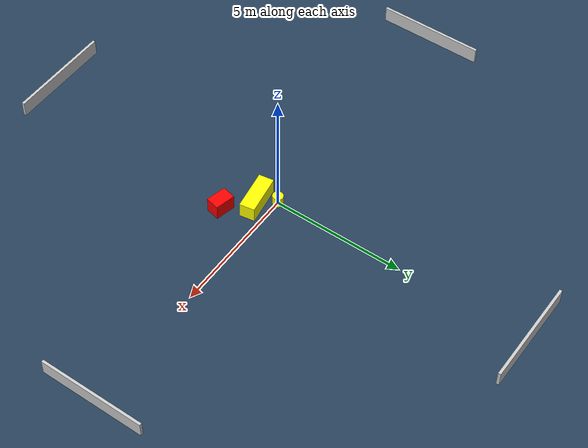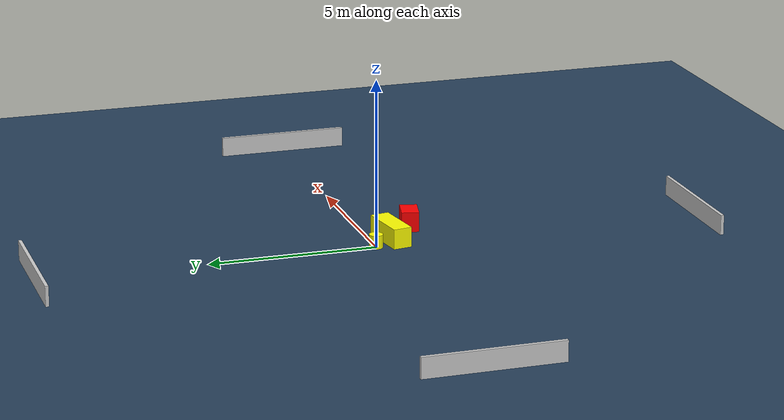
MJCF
<?xml version="1.0" ?>
<mujoco model="generated_environment">
  <option timestep="0.01" integrator="RK4" cone="elliptic"/>
  <default>
    <geom density="1"/>
  </default>
  <asset>
    <texture builtin="gradient" height="3072" name="skybox" rgb1="0.3 0.5 0.7" rgb2="0 0 0" type="skybox" width="512"/>
    <texture builtin="checker" height="300" name="groundplane" rgb1="0.2 0.3 0.4" rgb2="0.1 0.2 0.3" type="2d" width="300"/>
    <material name="groundplane" reflectance="0.2" texrepeat="5 5" texture="groundplane"/>
  </asset>
  <worldbody>
    <light dir="0 0 -1" directional="true" pos="0 0 1.5"/>
    <geom condim="3" friction="0.5 0.005 0.001" material="groundplane" name="floor" pos="0 0 0" size="0 0 0.05" type="plane"/>
    <body name="walls">
      <geom name="wall_1" condim="4" pos="-10.0 0.0 0.3" rgba="0.800000011920929 0.800000011920929 0.800000011920929 1.0" size="0.05 2.0 0.3" type="box"/>
      <geom name="wall_2" condim="4" pos="10.0 0.0 0.3" rgba="0.800000011920929 0.800000011920929 0.800000011920929 1.0" size="0.05 2.0 0.3" type="box"/>
      <geom name="wall_3" condim="4" pos="0.0 -10.0 0.3" rgba="0.800000011920929 0.800000011920929 0.800000011920929 1.0" size="2.0 0.05 0.3" type="box"/>
      <geom name="wall_4" condim="4" pos="0.0 10.0 0.3" rgba="0.800000011920929 0.800000011920929 0.800000011920929 1.0" size="2.0 0.05 0.3" type="box"/>
    </body>
    <body name="robot">
      <joint name="joint_x" type="slide" pos="0 0 0" axis="1 0 0"/>
      <joint name="joint_y" type="slide" pos="0 0 0" axis="0 1 0"/>
      <geom name="robot" type="cylinder" pos="0.0 0.0 0.2" size="0.2 0.2 0.0" mass="5.0" friction="1.0 0.005 0.0001" condim="4" rgba="1.0 1.0 0.0 1.0"/>
    </body>
    <body name="obstacle_1_movable">
      <geom name="obstacle_1_movable" condim="4" pos="0.43688102836122017 -0.5940635047915694 0.3" euler="0 0 99.18664756493179" friction="0.0 0.005 0.001" rgba="1.0 1.0 0.0 1.0" size="0.2846552848618758 0.7531988613417919 0.3" type="box" mass="0.1"/>
      <joint type="free"/>
    </body>
    <body name="obstacle_2_static">
      <geom name="obstacle_2_static" condim="4" pos="1.3671798218401583 -1.4576159139655878 0.3" euler="0 0 167.0023612364035" friction="0.0 0.005 0.001" rgba="1.0 0.0 0.0 1.0" size="0.3833927321994134 0.25946664928755314 0.3" type="box"/>
    </body>
  </worldbody>
  <actuator>
    <motor name="actuator_x" joint="joint_x" gear="1" ctrlrange="-1 1"/>
    <motor name="actuator_y" joint="joint_y" gear="1" ctrlrange="-1 1"/>
  </actuator>
</mujoco>
